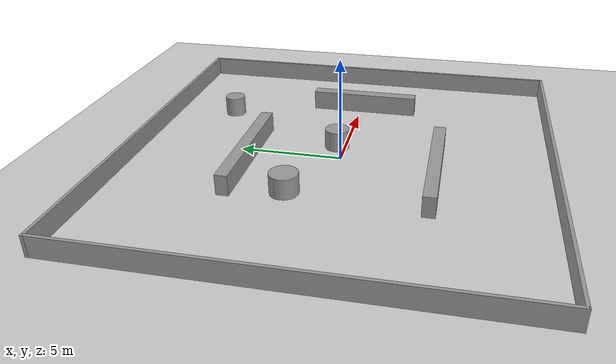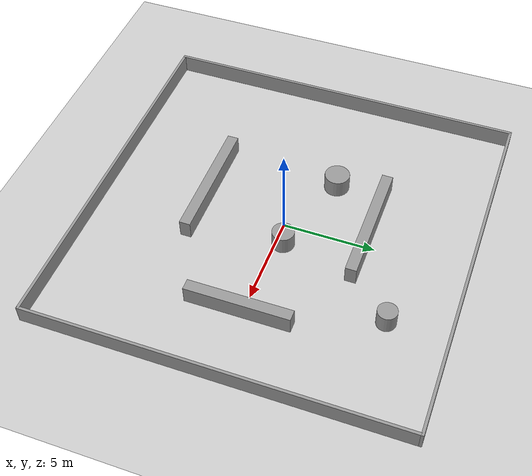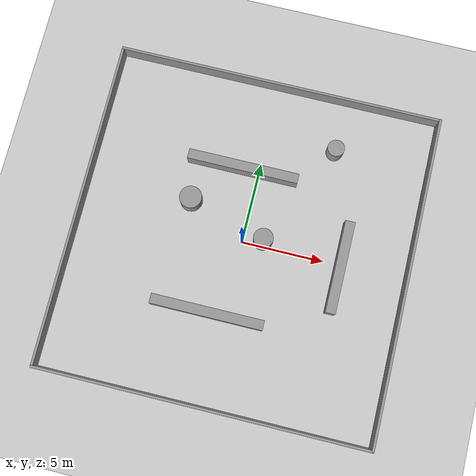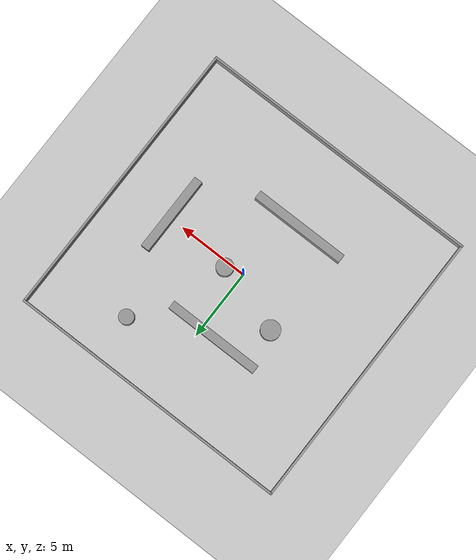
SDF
<?xml version="1.0" ?>
<sdf version="1.6">
  <world name="room">

    <include><uri>model://sun</uri></include>
    <include><uri>model://ground_plane</uri></include>

    <physics name="default_physics" default="true" type="ode">
      <max_step_size>0.001</max_step_size>
      <real_time_factor>1.0</real_time_factor>
      <real_time_update_rate>1000</real_time_update_rate>
    </physics>

    <scene>
      <ambient>0.4 0.4 0.4 1</ambient>
      <background>0.7 0.7 0.7 1</background>
      <shadows>false</shadows>
    </scene>

    <model name="room_obstacles">
      <static>true</static>
      <link name="body">
      <collision name="col_0">
        <pose>0.0000 -10.0000 0.5000 0 0 0.00000</pose>
        <geometry>
          <box><size>20.1500 0.1500 1.0000</size></box>
        </geometry>
      </collision>
      <visual name="vis_0">
        <pose>0.0000 -10.0000 0.5000 0 0 0.00000</pose>
        <geometry>
          <box><size>20.1500 0.1500 1.0000</size></box>
        </geometry>
        <material>
          <script>
            <uri>file://media/materials/scripts/gazebo.material</uri>
            <name>Gazebo/Grey</name>
          </script>
        </material>
      </visual>
      <collision name="col_1">
        <pose>10.0000 0.0000 0.5000 0 0 1.57080</pose>
        <geometry>
          <box><size>20.1500 0.1500 1.0000</size></box>
        </geometry>
      </collision>
      <visual name="vis_1">
        <pose>10.0000 0.0000 0.5000 0 0 1.57080</pose>
        <geometry>
          <box><size>20.1500 0.1500 1.0000</size></box>
        </geometry>
        <material>
          <script>
            <uri>file://media/materials/scripts/gazebo.material</uri>
            <name>Gazebo/Grey</name>
          </script>
        </material>
      </visual>
      <collision name="col_2">
        <pose>0.0000 10.0000 0.5000 0 0 3.14159</pose>
        <geometry>
          <box><size>20.1500 0.1500 1.0000</size></box>
        </geometry>
      </collision>
      <visual name="vis_2">
        <pose>0.0000 10.0000 0.5000 0 0 3.14159</pose>
        <geometry>
          <box><size>20.1500 0.1500 1.0000</size></box>
        </geometry>
        <material>
          <script>
            <uri>file://media/materials/scripts/gazebo.material</uri>
            <name>Gazebo/Grey</name>
          </script>
        </material>
      </visual>
      <collision name="col_3">
        <pose>-10.0000 0.0000 0.5000 0 0 -1.57080</pose>
        <geometry>
          <box><size>20.1500 0.1500 1.0000</size></box>
        </geometry>
      </collision>
      <visual name="vis_3">
        <pose>-10.0000 0.0000 0.5000 0 0 -1.57080</pose>
        <geometry>
          <box><size>20.1500 0.1500 1.0000</size></box>
        </geometry>
        <material>
          <script>
            <uri>file://media/materials/scripts/gazebo.material</uri>
            <name>Gazebo/Grey</name>
          </script>
        </material>
      </visual>
      <collision name="col_4">
        <pose>-1.0000 4.4000 0.5000 0 0 0.00000</pose>
        <geometry>
          <box><size>6.8000 0.6000 1.0000</size></box>
        </geometry>
      </collision>
      <visual name="vis_4">
        <pose>-1.0000 4.4000 0.5000 0 0 0.00000</pose>
        <geometry>
          <box><size>6.8000 0.6000 1.0000</size></box>
        </geometry>
        <material>
          <script>
            <uri>file://media/materials/scripts/gazebo.material</uri>
            <name>Gazebo/Grey</name>
          </script>
        </material>
      </visual>
      <collision name="col_5">
        <pose>-1.0000 -4.6000 0.5000 0 0 0.00000</pose>
        <geometry>
          <box><size>6.8000 0.6000 1.0000</size></box>
        </geometry>
      </collision>
      <visual name="vis_5">
        <pose>-1.0000 -4.6000 0.5000 0 0 0.00000</pose>
        <geometry>
          <box><size>6.8000 0.6000 1.0000</size></box>
        </geometry>
        <material>
          <script>
            <uri>file://media/materials/scripts/gazebo.material</uri>
            <name>Gazebo/Grey</name>
          </script>
        </material>
      </visual>
      <collision name="col_6">
        <pose>6.0000 -0.2000 0.5000 0 0 0.00000</pose>
        <geometry>
          <box><size>0.6000 5.6000 1.0000</size></box>
        </geometry>
      </collision>
      <visual name="vis_6">
        <pose>6.0000 -0.2000 0.5000 0 0 0.00000</pose>
        <geometry>
          <box><size>0.6000 5.6000 1.0000</size></box>
        </geometry>
        <material>
          <script>
            <uri>file://media/materials/scripts/gazebo.material</uri>
            <name>Gazebo/Grey</name>
          </script>
        </material>
      </visual>
      <collision name="col_7">
        <pose>4.2000 6.8000 0.5000 0 0 0.00000</pose>
        <geometry>
          <cylinder><radius>0.5200</radius><length>1.0000</length></cylinder>
        </geometry>
      </collision>
      <visual name="vis_7">
        <pose>4.2000 6.8000 0.5000 0 0 0.00000</pose>
        <geometry>
          <cylinder><radius>0.5200</radius><length>1.0000</length></cylinder>
        </geometry>
        <material>
          <script>
            <uri>file://media/materials/scripts/gazebo.material</uri>
            <name>Gazebo/Grey</name>
          </script>
        </material>
      </visual>
      <collision name="col_8">
        <pose>-3.6000 1.8000 0.5000 0 0 0.00000</pose>
        <geometry>
          <cylinder><radius>0.6800</radius><length>1.0000</length></cylinder>
        </geometry>
      </collision>
      <visual name="vis_8">
        <pose>-3.6000 1.8000 0.5000 0 0 0.00000</pose>
        <geometry>
          <cylinder><radius>0.6800</radius><length>1.0000</length></cylinder>
        </geometry>
        <material>
          <script>
            <uri>file://media/materials/scripts/gazebo.material</uri>
            <name>Gazebo/Grey</name>
          </script>
        </material>
      </visual>
      <collision name="col_9">
        <pose>1.2000 0.4000 0.5000 0 0 0.00000</pose>
        <geometry>
          <cylinder><radius>0.6000</radius><length>1.0000</length></cylinder>
        </geometry>
      </collision>
      <visual name="vis_9">
        <pose>1.2000 0.4000 0.5000 0 0 0.00000</pose>
        <geometry>
          <cylinder><radius>0.6000</radius><length>1.0000</length></cylinder>
        </geometry>
        <material>
          <script>
            <uri>file://media/materials/scripts/gazebo.material</uri>
            <name>Gazebo/Grey</name>
          </script>
        </material>
      </visual>
      </link>
    </model>

  </world>
</sdf>
